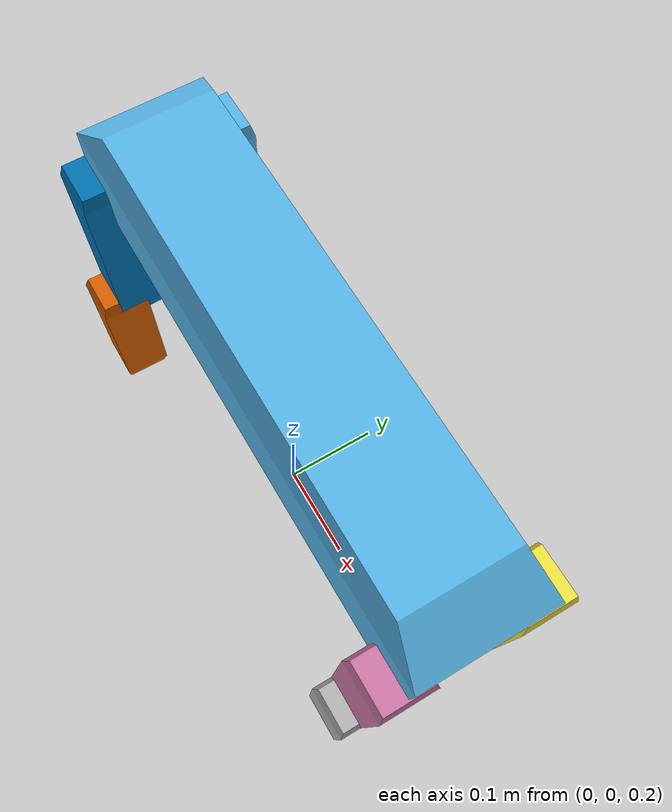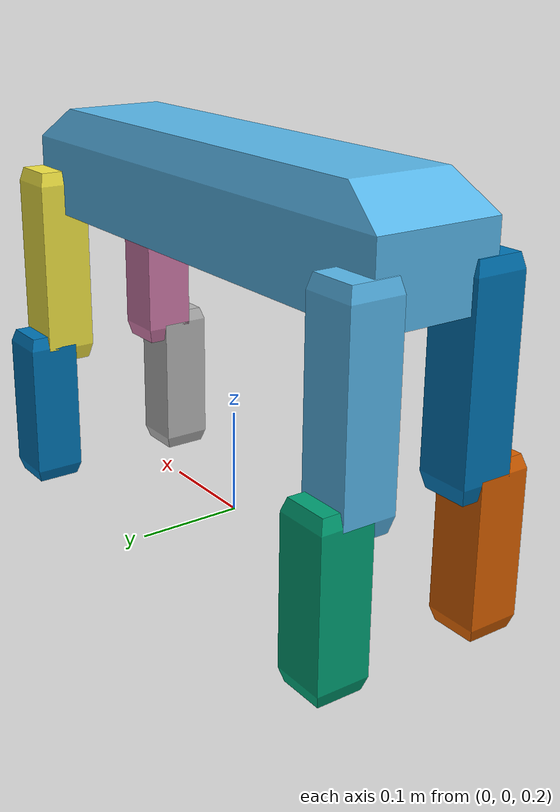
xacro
<?xml version="1.0"?>
<robot xmlns:xacro="http://www.ros.org/wiki/xacro"  name="qadru_bot">

  <!-- Root Link (base_link) -->
  <link name="base_link"/>

  <!-- Body Link -->
  <link name="body">
    <visual>
      <origin xyz="0 0 0" rpy="0 0 0"/>
      <geometry>
        <mesh filename="package://qadru_bot/meshes/body_final.stl" scale="1 1 1"/>
      </geometry>
    </visual>
  </link>

  <!-- Fixed Joint: base_link to body -->
  <joint name="base_to_body" type="fixed">
    <parent link="base_link"/>
    <child link="body"/>
    <origin xyz="0 0 0.5" rpy="0 0 0"/>
  </joint>

  <!-- Front Left Leg -->
  <link name="thigh_base_fl">
    <visual>
      <origin xyz="0 0 0" rpy="0 0 0"/>
      <geometry>
        <box size="0.01 0.01 0.01"/>
      </geometry>
    </visual>
  </link>

  <joint name="thigh_joint_fl_x" type="revolute">
    <parent link="body"/>
    <child link="thigh_base_fl"/>
    <origin xyz="0.24 0.03 -0.025" rpy="0 0 0"/>
    <axis xyz="1 0 0"/>
    <limit effort="10" velocity="1.0" lower="-1.57" upper="1.57"/>
  </joint>

  <link name="thigh_fl">
    <visual>
      <origin xyz="0 0.03 -0.075" rpy="0 0 0"/>
      <geometry>
        <mesh filename="package://qadru_bot/meshes/thigh_link.stl" scale="1 1 1"/>
      </geometry>
    </visual>
  </link>

  <joint name="thigh_joint_fl_y" type="revolute">
    <parent link="thigh_base_fl"/>
    <child link="thigh_fl"/>
    <origin xyz="0 0 0" rpy="0 0 0"/>
    <axis xyz="0 1 0"/>
    <limit effort="10" velocity="1.0" lower="-1.57" upper="1.57"/>
  </joint>

  <link name="shank_fl">
    <visual>
      <origin xyz="0 0 -0.075" rpy="0 0 0"/>
      <geometry>
        <mesh filename="package://qadru_bot/meshes/shank.stl" scale="1 1 1"/>
      </geometry>
    </visual>
  </link>

  <joint name="shank_joint_fl" type="revolute">
    <parent link="thigh_fl"/>
    <child link="shank_fl"/>
    <origin xyz="0 0.05 -0.15" rpy="0 0 0"/>
    <axis xyz="0 1 0"/>
    <limit effort="10" velocity="1.0" lower="-1.57" upper="1.57"/>
  </joint>

  <!-- Front Right Leg -->
  <link name="thigh_base_fr">
    <visual>
      <origin xyz="0 0 0" rpy="0 0 0"/>
      <geometry>
        <box size="0.01 0.01 0.01"/>
      </geometry>
    </visual>
  </link>

  <joint name="thigh_joint_fr_x" type="revolute">
    <parent link="body"/>
    <child link="thigh_base_fr"/>
    <origin xyz="0.24 -0.03 -0.025" rpy="0 0 0"/>
    <axis xyz="1 0 0"/>
    <limit effort="10" velocity="1.0" lower="-1.57" upper="1.57"/>
  </joint>

  <link name="thigh_fr">
    <visual>
      <origin xyz="0 -0.03 -0.075" rpy="0 0 0"/>
      <geometry>
        <mesh filename="package://qadru_bot/meshes/thigh_link.stl" scale="1 1 1"/>
      </geometry>
    </visual>
  </link>

  <joint name="thigh_joint_fr_y" type="revolute">
    <parent link="thigh_base_fr"/>
    <child link="thigh_fr"/>
    <origin xyz="0 0 0" rpy="0 0 0"/>
    <axis xyz="0 1 0"/>
    <limit effort="10" velocity="1.0" lower="-1.57" upper="1.57"/>
  </joint>

  <link name="shank_fr">
    <visual>
      <origin xyz="0 0 -0.075" rpy="0 0 0"/>
      <geometry>
        <mesh filename="package://qadru_bot/meshes/shank.stl" scale="1 1 1"/>
      </geometry>
    </visual>
  </link>

  <joint name="shank_joint_fr" type="revolute">
    <parent link="thigh_fr"/>
    <child link="shank_fr"/>
    <origin xyz="0 -0.05 -0.15" rpy="0 0 0"/>
    <axis xyz="0 1 0"/>
    <limit effort="10" velocity="1.0" lower="-1.57" upper="1.57"/>
  </joint>

  <!-- Rear Left Leg -->
  <link name="thigh_base_rl">
    <visual>
      <origin xyz="0 0 0" rpy="0 0 0"/>
      <geometry>
        <box size="0.01 0.01 0.01"/>
      </geometry>
    </visual>
  </link>

  <joint name="thigh_joint_rl_x" type="revolute">
    <parent link="body"/>
    <child link="thigh_base_rl"/>
    <origin xyz="-0.24 0.03 -0.025" rpy="0 0 0"/>
    <axis xyz="1 0 0"/>
    <limit effort="10" velocity="1.0" lower="-1.57" upper="1.57"/>
  </joint>

  <link name="thigh_rl">
    <visual>
      <origin xyz="0 0.03 -0.075" rpy="0 0 0"/>
      <geometry>
        <mesh filename="package://qadru_bot/meshes/thigh_link.stl" scale="1 1 1"/>
      </geometry>
    </visual>
  </link>

  <joint name="thigh_joint_rl_y" type="revolute">
    <parent link="thigh_base_rl"/>
    <child link="thigh_rl"/>
    <origin xyz="0 0 0" rpy="0 0 0"/>
    <axis xyz="0 1 0"/>
    <limit effort="10" velocity="1.0" lower="-1.57" upper="1.57"/>
  </joint>

  <link name="shank_rl">
    <visual>
      <origin xyz="0 0 -0.075" rpy="0 0 0"/>
      <geometry>
        <mesh filename="package://qadru_bot/meshes/shank.stl" scale="1 1 1"/>
      </geometry>
    </visual>
  </link>

  <joint name="shank_joint_rl" type="revolute">
    <parent link="thigh_rl"/>
    <child link="shank_rl"/>
    <origin xyz="0 0.05 -0.15" rpy="0 0 0"/>
    <axis xyz="0 1 0"/>
    <limit effort="10" velocity="1.0" lower="-1.57" upper="1.57"/>
  </joint>

  <!-- Rear Right Leg -->
  <link name="thigh_base_rr">
    <visual>
      <origin xyz="0 0 0" rpy="0 0 0"/>
      <geometry>
        <box size="0.01 0.01 0.01"/>
      </geometry>
    </visual>
  </link>

  <joint name="thigh_joint_rr_x" type="revolute">
    <parent link="body"/>
    <child link="thigh_base_rr"/>
    <origin xyz="-0.24 -0.03 -0.025" rpy="0 0 0"/>
    <axis xyz="1 0 0"/>
    <limit effort="10" velocity="1.0" lower="-1.57" upper="1.57"/>
  </joint>

  <link name="thigh_rr">
    <visual>
      <origin xyz="0 -0.03 -0.075" rpy="0 0 0"/>
      <geometry>
        <mesh filename="package://qadru_bot/meshes/thigh_link.stl" scale="1 1 1"/>
      </geometry>
    </visual>
  </link>

  <joint name="thigh_joint_rr_y" type="revolute">
    <parent link="thigh_base_rr"/>
    <child link="thigh_rr"/>
    <origin xyz="0 0 0" rpy="0 0 0"/>
    <axis xyz="0 1 0"/>
    <limit effort="10" velocity="1.0" lower="-1.57" upper="1.57"/>
  </joint>

  <link name="shank_rr">
    <visual>
      <origin xyz="0 0 -0.075" rpy="0 0 0"/>
      <geometry>
        <mesh filename="package://qadru_bot/meshes/shank.stl" scale="1 1 1"/>
      </geometry>
    </visual>
  </link>

  <joint name="shank_joint_rr" type="revolute">
    <parent link="thigh_rr"/>
    <child link="shank_rr"/>
    <origin xyz="0 -0.05 -0.15" rpy="0 0 0"/>
    <axis xyz="0 1 0"/>
    <limit effort="10" velocity="1.0" lower="-1.57" upper="1.57"/>
  </joint>

</robot>
